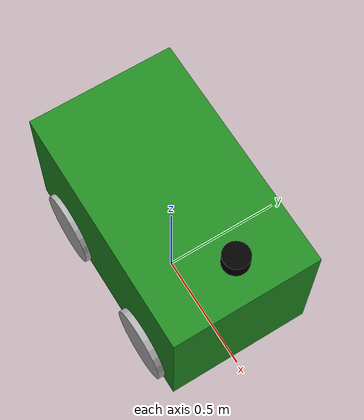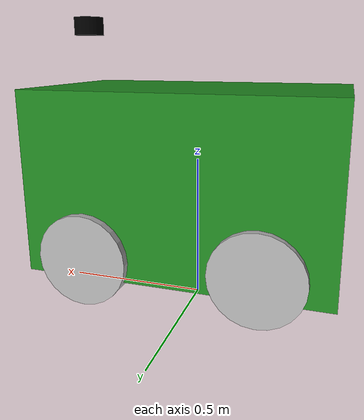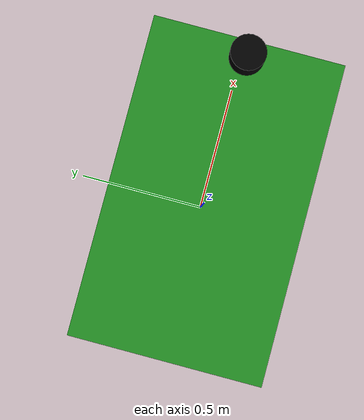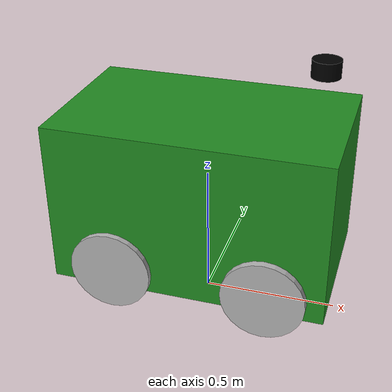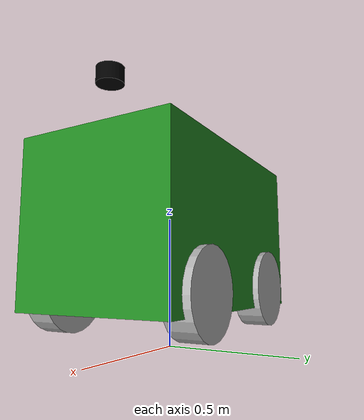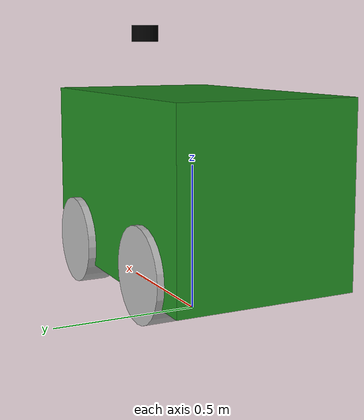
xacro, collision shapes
<?xml version="1.0" encoding="utf-8"?>
<robot name="zebrat" xmlns:xacro="http://www.ros.org/wiki/xacro">

  <xacro:arg name="gpu" default="false"/>
  <xacro:property name="gpu" value="$(arg gpu)" />
  <xacro:arg name="organize_cloud" default="false"/>
  <xacro:property name="organize_cloud" value="$(arg organize_cloud)" />
  <xacro:arg name="enable_velodyne" default="false"/>
  <xacro:property name="enable_velodyne" value="$(arg enable_velodyne)" />
  <xacro:arg name="use_planar_drive" default="true"/>
  <xacro:property name="use_planar_drive" value="$(arg use_planar_drive)" />

  <xacro:include filename="$(find zebrat)/urdf/sensors/VLP-16.urdf.xacro"/>
  <xacro:if value="${enable_velodyne}">
    <xacro:VLP-16 parent="base_link" name="velodyne" topic="/velodyne_points" organize_cloud="${organize_cloud}" hz="10" samples="440" gpu="${gpu}">
      <origin xyz="0.38 0 0.07" rpy="0 0 0" />
    </xacro:VLP-16>
  </xacro:if>

  <xacro:include filename="$(find zebrat)/urdf/sensors/lidar.xacro" />
  <joint name="lidar_joint" type="fixed">
    <origin xyz="0.4 0 0.5" rpy="0 0 0" />
    <parent link="base_link"/>
    <child link="laser_link"/>
  </joint>
  <xacro:lidar prefix="laser"/>

  <xacro:include filename="$(find zebrat)/urdf/sensors/imu.xacro" />
  <joint name="imu_joint" type="fixed">
    <origin  xyz="0.0 0 0" rpy="0 0 0" />
    <parent link="base_link"/>
    <child link="imu_link"/>
  </joint>
  <xacro:imu prefix="imu"/>

  <material name="Blue">
    <color rgba="0 0 1 1"/>
  </material>
  <material name="Grey">
    <color rgba="0.5 0.5 0.5 1"/>
  </material>
  <material name="Black">
    <color rgba="0 0 0 1"/>
  </material>
  <material name="Green">
    <color rgba="0.25 0.8 0.25 1"/>
  </material>

  <link name="base_footprint"/>

  <link
    name="base_link">
    <inertial>
      <origin
        xyz="0.070574 -0.0043486 -0.067094"
        rpy="0 0 0" />
      <mass
        value="100.00" />
      <inertia
        ixx="6"
        ixy="0.0"
        ixz="0.0"
        iyy="11.33"
        iyz="0.0"
        izz="11.33" />
    </inertial>
    <visual>
      <origin
        xyz="0 0 0"
        rpy="0 0 0" />
      <geometry>
        <mesh
          filename="package://zebrat/meshes/base_link.STL" />
      </geometry>
      <material
        name="Green">
        <color rgba="0.13 0.54 0.13 1.0"/>
      </material>
    </visual>
    <collision>
      <origin
        xyz="0 0 0"
        rpy="0 0 0" />
      <geometry>
        <box size = "1.0 0.6 0.6"/>
      </geometry>
    </collision>
  </link>
  <gazebo reference="$base_link">
    <material>Gazebo/Green</material>
  </gazebo>

  <joint
    name="footprint2base"
    type="fixed">
    <origin
      xyz="0 0 0.45"
      rpy="0 0 0" />
    <parent
      link="base_footprint" />
    <child
      link="base_link" />
    <axis
      xyz="0 0 0" />
  </joint>

  <link
    name="rl_wheel">
    <inertial>
      <origin
        xyz="3.0351E-07 7.0113E-05 5.1237E-07"
        rpy="0 0 0" />
      <mass
        value="1.0" />
      <inertia
        ixx="0.006458"
        ixy="0"
        ixz="0"
        iyy="0.006458"
        iyz="0"
        izz="0.01125" />
    </inertial>
    <visual>
      <origin
        xyz="0 0 0"
        rpy="0 0 0" />
      <geometry>
        <mesh
          filename="package://zebrat/meshes/lr_wheel.STL" />
      </geometry>
      <material
        name="">
        <color
          rgba="0.69804 0.69804 0.69804 1" />
      </material>
    </visual>

    <collision>
      <origin
        xyz="0 0 0"
        rpy="1.5708 0 0" />
      <geometry>
        <cylinder radius="0.15" length="0.1"/>
      </geometry>
    </collision>

  </link>
  <gazebo reference="$rl_wheel">
    <material>Gazebo/Black</material>
  </gazebo>

  <xacro:if value="${use_planar_drive}">
    <gazebo>
      <plugin name="gazebo_ros_planar_move" filename="libgazebo_ros_planar_move.so">
        <robotNamespace>/zebrat</robotNamespace>
        <commandTopic>/cmd_vel</commandTopic>
        <odometryTopic>/odom</odometryTopic>
        <odometryFrame>odom</odometryFrame>
        <robotBaseFrame>base_footprint</robotBaseFrame>
        <odometryRate>30.0</odometryRate>
        <cmdTimeout>0.25</cmdTimeout>
      </plugin>
    </gazebo>
  </xacro:if>

  <xacro:unless value="${use_planar_drive}">
    <gazebo>
      <plugin name="gazebo_ros_control" filename="libgazebo_ros_control.so">
      <legacyModeNS>true</legacyModeNS>
      <robotSimType>gazebo_ros_control/DefaultRobotHWSim</robotSimType>
      <robotNamespace>/zebrat</robotNamespace>
      </plugin>
    </gazebo>
  </xacro:unless>

  <joint
    name="rl_axle"
    type="continuous">
    <origin
      xyz="-0.2709 0.27237 -0.22667"
      rpy="0 0 0" />
    <parent
      link="base_link" />
    <child
      link="rl_wheel" />
    <axis
      xyz="0 1 0" />
    <limit
      effort="10.0"
      velocity="200.0" />
  </joint>
  <transmission name="rl_tran">
    <type>transmission_interface/SimpleTransmission</type>
    <joint name="rl_axle">
      <hardwareInterface>hardware_interface/EffortJointInterface</hardwareInterface>
    </joint>
    <actuator name="rl_act">
      <!-- This hardwareInterface element exists for compatibility
           with ROS Hydro. -->
      <hardwareInterface>hardware_interface/EffortJointInterface</hardwareInterface>
      <mechanicalReduction>1</mechanicalReduction>
    </actuator>
  </transmission>

  <link
    name="rr_wheel">
    <inertial>
      <origin
        xyz="-3.0351E-07 -7.0113E-05 5.1237E-07"
        rpy="0 0 0" />
      <mass
        value="1.0" />
      <inertia
        ixx="0.006458"
        ixy="0"
        ixz="0"
        iyy="0.006458"
        iyz="0"
        izz="0.01125" />
    </inertial>
    <visual>
      <origin
        xyz="0 0 0"
        rpy="0 0 0" />
      <geometry>
        <mesh
          filename="package://zebrat/meshes/rr_wheel.STL" />
      </geometry>
      <material
        name="">
        <color
          rgba="0.69804 0.69804 0.69804 1" />
      </material>
    </visual>

    <collision>
      <origin
        xyz="0 0 0"
        rpy="1.5708 0 0" />
      <geometry>
        <cylinder radius="0.15" length="0.1"/>
      </geometry>
    </collision>

  </link>
  <gazebo reference="$rr_wheel">
    <material>Gazebo/Black</material>
  </gazebo>

  <joint
    name="rr_axle"
    type="continuous">
    <origin
      xyz="-0.2709 -0.27237 -0.22667"
      rpy="0 0 0" />
    <parent
      link="base_link" />
    <child
      link="rr_wheel" />
    <axis
      xyz="0 1 0" />
    <limit
      effort="10.0"
      velocity="200.0" />
  </joint>
  <transmission name="rr_tran">
    <type>transmission_interface/SimpleTransmission</type>
    <joint name="rr_axle">
      <hardwareInterface>hardware_interface/EffortJointInterface</hardwareInterface>
    </joint>
    <actuator name="rr_act">
      <!-- This hardwareInterface element exists for compatibility
           with ROS Hydro. -->
      <hardwareInterface>hardware_interface/EffortJointInterface</hardwareInterface>
      <mechanicalReduction>1</mechanicalReduction>
    </actuator>
  </transmission>

  <link
    name="lstr_link">
    <inertial>
      <origin
        xyz="5.5511E-17 0 -0.025"
        rpy="0 0 0" />
      <mass
        value="0.001" />
      <inertia
        ixx="0.001"
        ixy="0"
        ixz="0"
        iyy="0.001"
        iyz="0"
        izz="0.001" />
    </inertial>
    <visual>
      <origin
        xyz="0 0 0"
        rpy="0 0 0" />
      <geometry>
        <mesh
          filename="package://zebrat/meshes/lstr_link.STL" />
      </geometry>
      <material
        name="">
        <color
          rgba="0.69804 0.69804 0.69804 1" />
      </material>
    </visual>
    <collision>
      <origin
        xyz="0 0 -0.0335"
        rpy="0 0 0" />
      <geometry>
        <box size="0.024 0.024 0.087" />
      </geometry>
    </collision>
  </link>

  <joint
    name="base2lstr"
    type="revolute">
    <origin
      xyz="0.2891 0.21125 -0.20084"
      rpy="0 0 0" />
    <parent
      link="base_link" />
    <child
      link="lstr_link" />
    <axis
      xyz="0 0 1" />
    <limit
      lower="-0.6"
      upper="0.6"
      effort="10.0"
      velocity="30.0" />
  </joint>

  <transmission name="lstr_tran">
    <type>transmission_interface/SimpleTransmission</type>
    <joint name="base2lstr">
      <hardwareInterface>hardware_interface/EffortJointInterface</hardwareInterface>
    </joint>
    <actuator name="lstr_act">
      <!-- This hardwareInterface element exists for compatibility
           with ROS Hydro. -->
      <hardwareInterface>hardware_interface/EffortJointInterface</hardwareInterface>
      <mechanicalReduction>1</mechanicalReduction>
    </actuator>
  </transmission>

  <link
    name="fl_wheel">
    <inertial>
      <origin
        xyz="-3.3596E-07 -0.0053454 -1.922E-07"
        rpy="0 0 0" />
      <mass
        value="1.0" />
      <inertia
        ixx="0.006458"
        ixy="0"
        ixz="0"
        iyy="0.006458"
        iyz="0"
        izz="0.01125" />
    </inertial>
    <visual>
      <origin
        xyz="0 0 0"
        rpy="0 0 0" />
      <geometry>
        <mesh
          filename="package://zebrat/meshes/lf_wheel.STL" />
      </geometry>
      <material
        name="">
        <color
          rgba="0.69804 0.69804 0.69804 1" />
      </material>
    </visual>

    <collision>
      <origin
        xyz="0 0 0"
        rpy="1.5708 0 0" />
      <geometry>
        <cylinder radius="0.15" length="0.1"/>
      </geometry>
    </collision>

  </link>
  <gazebo reference="$fl_wheel">
    <material>Gazebo/Black</material>
  </gazebo>

  <joint
    name="fl_axle"
    type="continuous">
    <origin
      xyz="0 0.0655 -0.031746"
      rpy="0 0 0" />
    <parent
      link="lstr_link" />
    <child
      link="fl_wheel" />
    <axis
      xyz="0 1 0" />
    <limit
      effort="10.0"
      velocity="200.0" />
  </joint>
  <transmission name="fl_tran">
    <type>transmission_interface/SimpleTransmission</type>
    <joint name="fl_axle">
      <hardwareInterface>hardware_interface/EffortJointInterface</hardwareInterface>
    </joint>
    <actuator name="fl_act">
      <!-- This hardwareInterface element exists for compatibility
           with ROS Hydro. -->
      <hardwareInterface>hardware_interface/EffortJointInterface</hardwareInterface>
      <mechanicalReduction>1</mechanicalReduction>
    </actuator>
  </transmission>

  <link
    name="rstr_link">
    <inertial>
      <origin
        xyz="-1.1102E-16 -2.7756E-17 -0.025"
        rpy="0 0 0" />
      <mass
        value="0.001" />
      <inertia
        ixx="0.001"
        ixy="0"
        ixz="0"
        iyy="0.001"
        iyz="0"
        izz="0.001" />
    </inertial>
    <visual>
      <origin
        xyz="0 0 0"
        rpy="0 0 0" />
      <geometry>
        <mesh
          filename="package://zebrat/meshes/rstr_link.STL" />
      </geometry>
      <material
        name="">
        <color
          rgba="0.69804 0.69804 0.69804 1" />
      </material>
    </visual>
    <collision>
      <origin
        xyz="0 0 -0.0335"
        rpy="0 0 0" />
      <geometry>
        <box size="0.024 0.024 0.087" />
      </geometry>
    </collision>
  </link>

  <joint
    name="base2rstr"
    type="revolute">
    <origin
      xyz="0.2891 -0.21125 -0.20084"
      rpy="0 0 0" />
    <parent
      link="base_link" />
    <child
      link="rstr_link" />
    <axis
      xyz="0 0 1" />
    <limit
      lower="-0.6"
      upper="0.6"
      effort="10.0"
      velocity="30.0" />
  </joint>
  <transmission name="rstr_tran">
    <type>transmission_interface/SimpleTransmission</type>
    <joint name="base2rstr">
      <hardwareInterface>hardware_interface/EffortJointInterface</hardwareInterface>
    </joint>
    <actuator name="rstr_act">
      <!-- This hardwareInterface element exists for compatibility
           with ROS Hydro. -->
      <hardwareInterface>hardware_interface/EffortJointInterface</hardwareInterface>
      <mechanicalReduction>1</mechanicalReduction>
    </actuator>
  </transmission>

  <link
    name="fr_wheel">
    <inertial>
      <origin
        xyz="-3.3596E-07 0.0053454 1.922E-07"
        rpy="0 0 0" />
      <mass
        value="1.0" />
      <inertia
        ixx="0.006458"
        ixy="0"
        ixz="0"
        iyy="0.006458"
        iyz="0"
        izz="0.01125" />
    </inertial>

    <visual>
      <origin
        xyz="0 0 0"
        rpy="0 0 0" />
      <geometry>
        <mesh
          filename="package://zebrat/meshes/rf_wheel.STL" />
      </geometry>
      <material
        name="">
        <color
          rgba="0.69804 0.69804 0.69804 1" />
      </material>
    </visual>

    <collision>
      <origin
        xyz="0 0 0"
        rpy="1.5708 0 0" />
      <geometry>
        <cylinder radius="0.15" length="0.1"/>
      </geometry>
    </collision>

  </link>
  <gazebo reference="$fr_wheel">
    <material>Gazebo/Black</material>
  </gazebo>

  <joint
    name="fr_axle"
    type="continuous">
    <origin
      xyz="0 -0.0655 -0.031746"
      rpy="0 0 0" />
    <parent
      link="rstr_link" />
    <child
      link="fr_wheel" />
    <axis
      xyz="0 1 0" />
    <limit
      effort="10.0"
      velocity="200.0" />
  </joint>

  <transmission name="fr_tran">
    <type>transmission_interface/SimpleTransmission</type>
    <joint name="fr_axle">
      <hardwareInterface>hardware_interface/EffortJointInterface</hardwareInterface>
    </joint>
    <actuator name="fr_act">
      <!-- This hardwareInterface element exists for compatibility
           with ROS Hydro. -->
      <hardwareInterface>hardware_interface/EffortJointInterface</hardwareInterface>
      <mechanicalReduction>1</mechanicalReduction>
    </actuator>
  </transmission>
</robot>

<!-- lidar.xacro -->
<robot xmlns:xacro="http://www.ros.org/wiki/xacro" name="lidar">

    <xacro:macro name="lidar" params="prefix:=laser">
        <!-- Create laser reference frame -->
        <link name="laser_link">
            <inertial>
                <mass value="0.001" />
                <origin xyz="0 0 0" />
                <inertia ixx="0.001" ixy="0.0" ixz="0.0"
                         iyy="0.001" iyz="0.0"
                         izz="0.001" />
            </inertial>

            <visual>
                <origin xyz=" 0 0 0 " rpy="0 0 0" />
                <geometry>
                    <cylinder length="0.05" radius="0.05"/>
                </geometry>
                <material name="black">
                    <color rgba="0 0 0 1"/>
                </material>
            </visual>

            <collision>
                <origin xyz="0.0 0.0 0.0" rpy="0 0 0" />
                <geometry>
                    <cylinder length="0.06" radius="0.05"/>
                </geometry>
            </collision>
        </link>
        <gazebo reference="laser_link">
            <material>Gazebo/Black</material>
        </gazebo>

        <gazebo reference="laser_link">
            <sensor type="ray" name="ls01g">
                <pose>0 0 0 0 0 0</pose>
                <visualize>true</visualize>
                <update_rate>10.0</update_rate>
                <ray>
                    <scan>
                        <horizontal>
                            <samples>361</samples>
                            <resolution>1</resolution>
                            <min_angle>-3.1415926</min_angle>
                            <max_angle>3.1415926</max_angle>
                        </horizontal>
                    </scan>
                    <range>
                        <min>0.10</min>
                        <max>8.0</max>
                        <resolution>0.01</resolution>
                    </range>
                    <noise>
                        <type>gaussian</type>
                        <mean>0.0</mean>
                        <stddev>0.01</stddev>
                    </noise>
                </ray>
                <plugin name="gazebo_ls01g" filename="libgazebo_ros_laser.so">
                    <topicName>/scan</topicName>
                    <frameName>laser_link</frameName>
                </plugin>
            </sensor>
        </gazebo>

    </xacro:macro>
</robot>

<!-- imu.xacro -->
<robot xmlns:xacro="http://www.ros.org/wiki/xacro" name="imu">

    <xacro:macro name="imu" params="prefix:=imu">
        <!-- Create laser reference frame -->
        <link name="${prefix}_link">
            <inertial>
                <mass value="0.001" />
                <origin xyz="0 0 0" />
                <inertia ixx="0.001" ixy="0.0" ixz="0.0"
                         iyy="0.001" iyz="0.0"
                         izz="0.001" />
            </inertial>

            <visual>
                <origin xyz=" 0 0 0 " rpy="0 0 0" />
                <geometry>
                    <box size="0.04 0.04 0.03" />
                </geometry>
                <material name="black">
                    <color rgba="0 0 0 1"/>
                </material>
            </visual>

            <collision>
                <origin xyz="0.0 0.0 0.0" rpy="0 0 0" />
                <geometry>
                    <box size="0.04 0.04 0.03" />
                </geometry>
            </collision>
        </link>
        <gazebo reference="${prefix}_link">
            <material>Gazebo/Black</material>
        </gazebo>

        <gazebo reference="${prefix}_link">
            <gravity>true</gravity>
            <sensor name="imu_sensor" type="imu">
                <always_on>true</always_on>
                <update_rate>100</update_rate>
                <visualize>true</visualize>
                <topic>/imu_data</topic>
                <plugin filename="libgazebo_ros_imu_sensor.so" name="imu_plugin">
                    <topicName>/imu</topicName>
                    <bodyName>imu_link</bodyName>
                    <updateRateHZ>100.0</updateRateHZ>
                    <gaussianNoise>0.0</gaussianNoise>
                    <xyzOffset>0 0 0</xyzOffset>
                    <rpyOffset>0 0 0</rpyOffset>
                    <frameName>imu_link</frameName>
                </plugin>
                <pose>0 0 0 0 0 0</pose>
            </sensor>
        </gazebo>

    </xacro:macro>
</robot>
